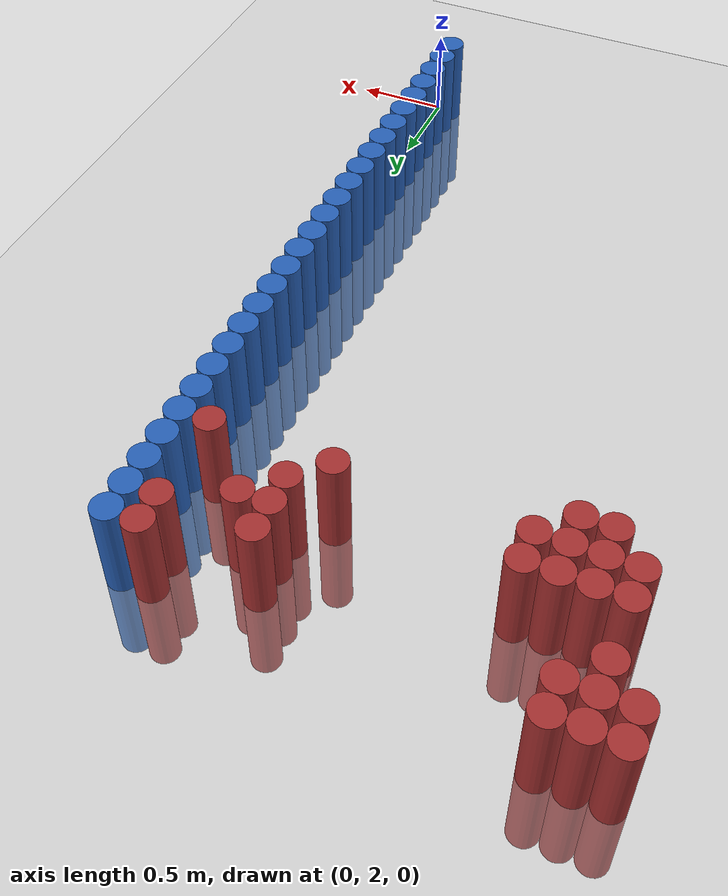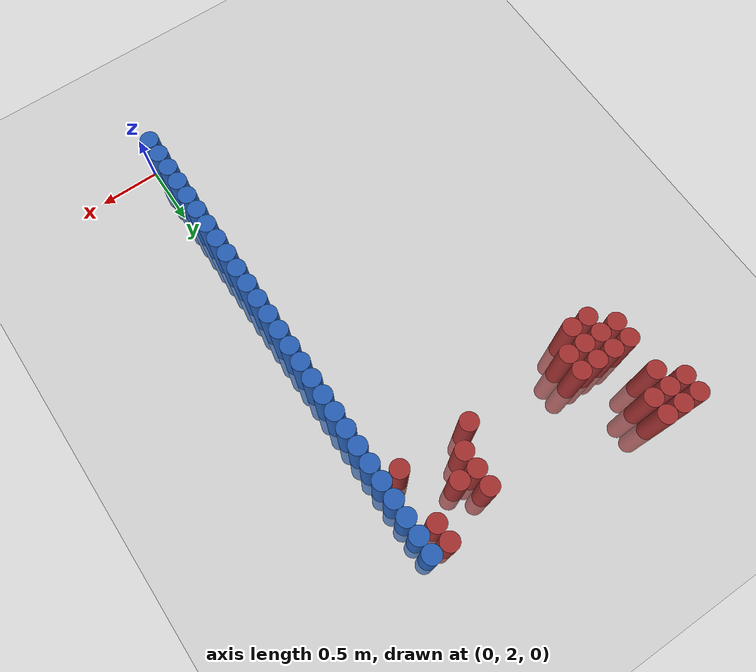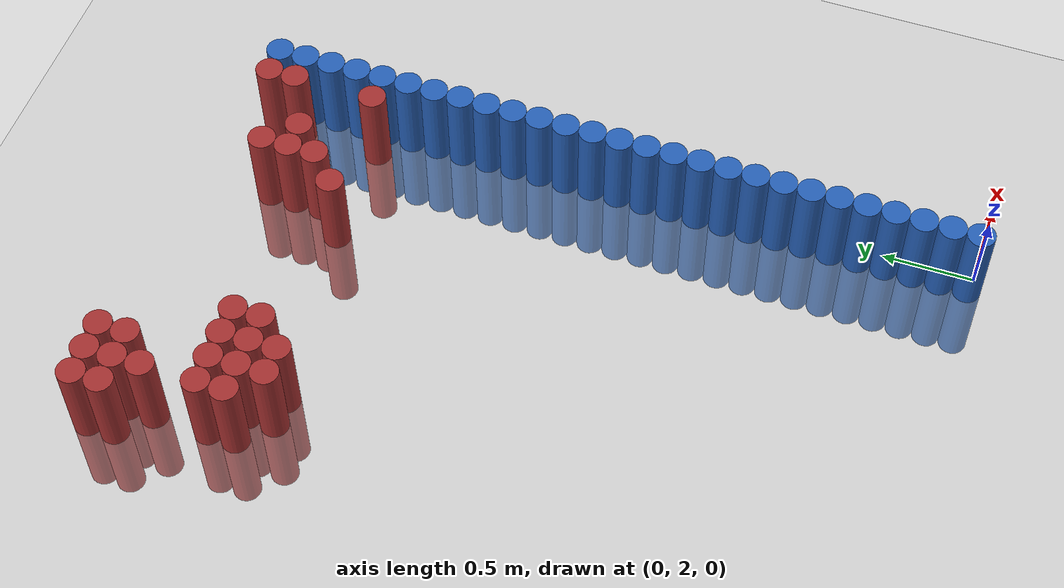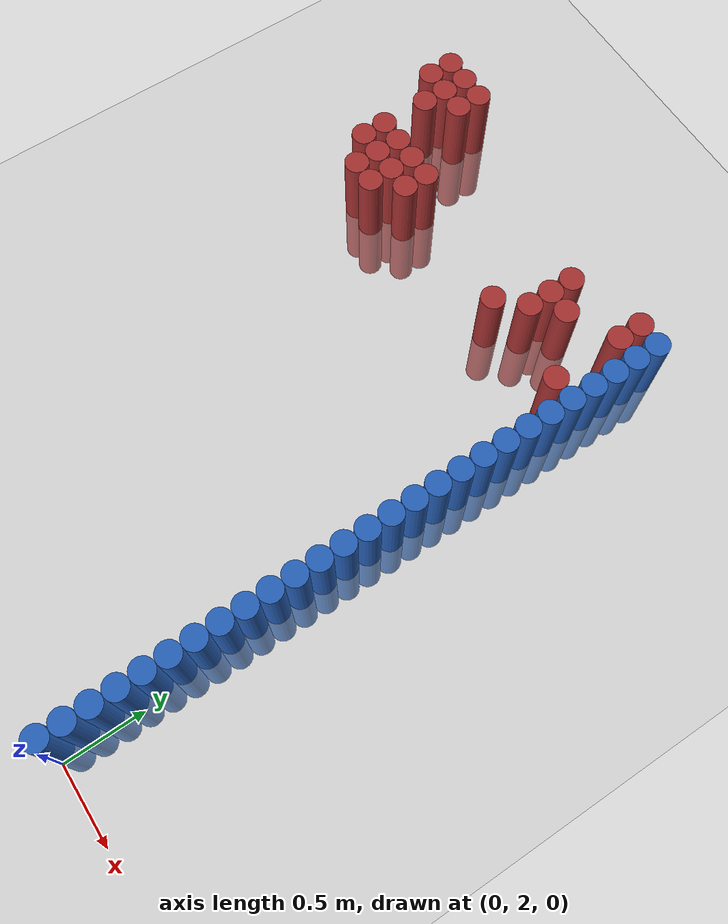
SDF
<sdf version="1.6">
 <world name="default">
  <model name="ground_plane">
   <static>1</static>
   <link name="link">
    <collision name="collision">
     <geometry><plane><normal>0 0 1</normal><size>100 100</size></plane></geometry>
     <surface><friction><ode><mu>100</mu><mu2>50</mu2></ode></friction></surface>
    </collision>
    <visual name="visual">
     <cast_shadows>0</cast_shadows>
     <geometry><plane><normal>0 0 1</normal><size>100 100</size></plane></geometry>
     <material>
      <script><uri>file://media/materials/scripts/gazebo.material</uri><name>Gazebo/Grey</name></script>
     </material>
    </visual>
   </link>
  </model>
  <model name="unit_cylinder_54">
   <static>1</static>
   <pose>-0.075000 2.025000 0.000000 0.000000 0.000000 0.000000</pose>
   <link name="link">
    <inertial>
     <mass>1</mass>
     <inertia><ixx>0.145833</ixx><ixy>0</ixy><ixz>0</ixz><iyy>0.145833</iyy><iyz>0</iyz><izz>0.125</izz></inertia>
    </inertial>
    <collision name="collision">
     <geometry><cylinder><radius>0.075000</radius><length>1</length></cylinder></geometry>
    </collision>
    <visual name="visual">
     <geometry><cylinder><radius>0.075000</radius><length>1</length></cylinder></geometry>
     <material>
      <ambient>0.152000 0.379000 0.720000 1</ambient>
      <diffuse>0.152000 0.379000 0.720000 1</diffuse>
     </material>
     <material>
      <script><name>Gazebo/Grey</name><uri>file://media/materials/scripts/gazebo.material</uri></script>
     </material>
    </visual>
   </link>
  </model>
  <model name="unit_cylinder_56">
   <static>1</static>
   <pose>-0.075000 2.175000 0.000000 0.000000 0.000000 0.000000</pose>
   <link name="link">
    <inertial>
     <mass>1</mass>
     <inertia><ixx>0.145833</ixx><ixy>0</ixy><ixz>0</ixz><iyy>0.145833</iyy><iyz>0</iyz><izz>0.125</izz></inertia>
    </inertial>
    <collision name="collision">
     <geometry><cylinder><radius>0.075000</radius><length>1</length></cylinder></geometry>
    </collision>
    <visual name="visual">
     <geometry><cylinder><radius>0.075000</radius><length>1</length></cylinder></geometry>
     <material>
      <ambient>0.152000 0.379000 0.720000 1</ambient>
      <diffuse>0.152000 0.379000 0.720000 1</diffuse>
     </material>
     <material>
      <script><name>Gazebo/Grey</name><uri>file://media/materials/scripts/gazebo.material</uri></script>
     </material>
    </visual>
   </link>
  </model>
  <model name="unit_cylinder_58">
   <static>1</static>
   <pose>-0.075000 2.325000 0.000000 0.000000 0.000000 0.000000</pose>
   <link name="link">
    <inertial>
     <mass>1</mass>
     <inertia><ixx>0.145833</ixx><ixy>0</ixy><ixz>0</ixz><iyy>0.145833</iyy><iyz>0</iyz><izz>0.125</izz></inertia>
    </inertial>
    <collision name="collision">
     <geometry><cylinder><radius>0.075000</radius><length>1</length></cylinder></geometry>
    </collision>
    <visual name="visual">
     <geometry><cylinder><radius>0.075000</radius><length>1</length></cylinder></geometry>
     <material>
      <ambient>0.152000 0.379000 0.720000 1</ambient>
      <diffuse>0.152000 0.379000 0.720000 1</diffuse>
     </material>
     <material>
      <script><name>Gazebo/Grey</name><uri>file://media/materials/scripts/gazebo.material</uri></script>
     </material>
    </visual>
   </link>
  </model>
  <model name="unit_cylinder_60">
   <static>1</static>
   <pose>-0.075000 2.475000 0.000000 0.000000 0.000000 0.000000</pose>
   <link name="link">
    <inertial>
     <mass>1</mass>
     <inertia><ixx>0.145833</ixx><ixy>0</ixy><ixz>0</ixz><iyy>0.145833</iyy><iyz>0</iyz><izz>0.125</izz></inertia>
    </inertial>
    <collision name="collision">
     <geometry><cylinder><radius>0.075000</radius><length>1</length></cylinder></geometry>
    </collision>
    <visual name="visual">
     <geometry><cylinder><radius>0.075000</radius><length>1</length></cylinder></geometry>
     <material>
      <ambient>0.152000 0.379000 0.720000 1</ambient>
      <diffuse>0.152000 0.379000 0.720000 1</diffuse>
     </material>
     <material>
      <script><name>Gazebo/Grey</name><uri>file://media/materials/scripts/gazebo.material</uri></script>
     </material>
    </visual>
   </link>
  </model>
  <model name="unit_cylinder_62">
   <static>1</static>
   <pose>-0.075000 2.625000 0.000000 0.000000 0.000000 0.000000</pose>
   <link name="link">
    <inertial>
     <mass>1</mass>
     <inertia><ixx>0.145833</ixx><ixy>0</ixy><ixz>0</ixz><iyy>0.145833</iyy><iyz>0</iyz><izz>0.125</izz></inertia>
    </inertial>
    <collision name="collision">
     <geometry><cylinder><radius>0.075000</radius><length>1</length></cylinder></geometry>
    </collision>
    <visual name="visual">
     <geometry><cylinder><radius>0.075000</radius><length>1</length></cylinder></geometry>
     <material>
      <ambient>0.152000 0.379000 0.720000 1</ambient>
      <diffuse>0.152000 0.379000 0.720000 1</diffuse>
     </material>
     <material>
      <script><name>Gazebo/Grey</name><uri>file://media/materials/scripts/gazebo.material</uri></script>
     </material>
    </visual>
   </link>
  </model>
  <model name="unit_cylinder_64">
   <static>1</static>
   <pose>-0.075000 2.775000 0.000000 0.000000 0.000000 0.000000</pose>
   <link name="link">
    <inertial>
     <mass>1</mass>
     <inertia><ixx>0.145833</ixx><ixy>0</ixy><ixz>0</ixz><iyy>0.145833</iyy><iyz>0</iyz><izz>0.125</izz></inertia>
    </inertial>
    <collision name="collision">
     <geometry><cylinder><radius>0.075000</radius><length>1</length></cylinder></geometry>
    </collision>
    <visual name="visual">
     <geometry><cylinder><radius>0.075000</radius><length>1</length></cylinder></geometry>
     <material>
      <ambient>0.152000 0.379000 0.720000 1</ambient>
      <diffuse>0.152000 0.379000 0.720000 1</diffuse>
     </material>
     <material>
      <script><name>Gazebo/Grey</name><uri>file://media/materials/scripts/gazebo.material</uri></script>
     </material>
    </visual>
   </link>
  </model>
  <model name="unit_cylinder_66">
   <static>1</static>
   <pose>-0.075000 2.925000 0.000000 0.000000 0.000000 0.000000</pose>
   <link name="link">
    <inertial>
     <mass>1</mass>
     <inertia><ixx>0.145833</ixx><ixy>0</ixy><ixz>0</ixz><iyy>0.145833</iyy><iyz>0</iyz><izz>0.125</izz></inertia>
    </inertial>
    <collision name="collision">
     <geometry><cylinder><radius>0.075000</radius><length>1</length></cylinder></geometry>
    </collision>
    <visual name="visual">
     <geometry><cylinder><radius>0.075000</radius><length>1</length></cylinder></geometry>
     <material>
      <ambient>0.152000 0.379000 0.720000 1</ambient>
      <diffuse>0.152000 0.379000 0.720000 1</diffuse>
     </material>
     <material>
      <script><name>Gazebo/Grey</name><uri>file://media/materials/scripts/gazebo.material</uri></script>
     </material>
    </visual>
   </link>
  </model>
  <model name="unit_cylinder_68">
   <static>1</static>
   <pose>-0.075000 3.075000 0.000000 0.000000 0.000000 0.000000</pose>
   <link name="link">
    <inertial>
     <mass>1</mass>
     <inertia><ixx>0.145833</ixx><ixy>0</ixy><ixz>0</ixz><iyy>0.145833</iyy><iyz>0</iyz><izz>0.125</izz></inertia>
    </inertial>
    <collision name="collision">
     <geometry><cylinder><radius>0.075000</radius><length>1</length></cylinder></geometry>
    </collision>
    <visual name="visual">
     <geometry><cylinder><radius>0.075000</radius><length>1</length></cylinder></geometry>
     <material>
      <ambient>0.152000 0.379000 0.720000 1</ambient>
      <diffuse>0.152000 0.379000 0.720000 1</diffuse>
     </material>
     <material>
      <script><name>Gazebo/Grey</name><uri>file://media/materials/scripts/gazebo.material</uri></script>
     </material>
    </visual>
   </link>
  </model>
  <model name="unit_cylinder_70">
   <static>1</static>
   <pose>-0.075000 3.225000 0.000000 0.000000 0.000000 0.000000</pose>
   <link name="link">
    <inertial>
     <mass>1</mass>
     <inertia><ixx>0.145833</ixx><ixy>0</ixy><ixz>0</ixz><iyy>0.145833</iyy><iyz>0</iyz><izz>0.125</izz></inertia>
    </inertial>
    <collision name="collision">
     <geometry><cylinder><radius>0.075000</radius><length>1</length></cylinder></geometry>
    </collision>
    <visual name="visual">
     <geometry><cylinder><radius>0.075000</radius><length>1</length></cylinder></geometry>
     <material>
      <ambient>0.152000 0.379000 0.720000 1</ambient>
      <diffuse>0.152000 0.379000 0.720000 1</diffuse>
     </material>
     <material>
      <script><name>Gazebo/Grey</name><uri>file://media/materials/scripts/gazebo.material</uri></script>
     </material>
    </visual>
   </link>
  </model>
  <model name="unit_cylinder_72">
   <static>1</static>
   <pose>-0.075000 3.375000 0.000000 0.000000 0.000000 0.000000</pose>
   <link name="link">
    <inertial>
     <mass>1</mass>
     <inertia><ixx>0.145833</ixx><ixy>0</ixy><ixz>0</ixz><iyy>0.145833</iyy><iyz>0</iyz><izz>0.125</izz></inertia>
    </inertial>
    <collision name="collision">
     <geometry><cylinder><radius>0.075000</radius><length>1</length></cylinder></geometry>
    </collision>
    <visual name="visual">
     <geometry><cylinder><radius>0.075000</radius><length>1</length></cylinder></geometry>
     <material>
      <ambient>0.152000 0.379000 0.720000 1</ambient>
      <diffuse>0.152000 0.379000 0.720000 1</diffuse>
     </material>
     <material>
      <script><name>Gazebo/Grey</name><uri>file://media/materials/scripts/gazebo.material</uri></script>
     </material>
    </visual>
   </link>
  </model>
  <model name="unit_cylinder_74">
   <static>1</static>
   <pose>-0.075000 3.525000 0.000000 0.000000 0.000000 0.000000</pose>
   <link name="link">
    <inertial>
     <mass>1</mass>
     <inertia><ixx>0.145833</ixx><ixy>0</ixy><ixz>0</ixz><iyy>0.145833</iyy><iyz>0</iyz><izz>0.125</izz></inertia>
    </inertial>
    <collision name="collision">
     <geometry><cylinder><radius>0.075000</radius><length>1</length></cylinder></geometry>
    </collision>
    <visual name="visual">
     <geometry><cylinder><radius>0.075000</radius><length>1</length></cylinder></geometry>
     <material>
      <ambient>0.152000 0.379000 0.720000 1</ambient>
      <diffuse>0.152000 0.379000 0.720000 1</diffuse>
     </material>
     <material>
      <script><name>Gazebo/Grey</name><uri>file://media/materials/scripts/gazebo.material</uri></script>
     </material>
    </visual>
   </link>
  </model>
  <model name="unit_cylinder_76">
   <static>1</static>
   <pose>-0.075000 3.675000 0.000000 0.000000 0.000000 0.000000</pose>
   <link name="link">
    <inertial>
     <mass>1</mass>
     <inertia><ixx>0.145833</ixx><ixy>0</ixy><ixz>0</ixz><iyy>0.145833</iyy><iyz>0</iyz><izz>0.125</izz></inertia>
    </inertial>
    <collision name="collision">
     <geometry><cylinder><radius>0.075000</radius><length>1</length></cylinder></geometry>
    </collision>
    <visual name="visual">
     <geometry><cylinder><radius>0.075000</radius><length>1</length></cylinder></geometry>
     <material>
      <ambient>0.152000 0.379000 0.720000 1</ambient>
      <diffuse>0.152000 0.379000 0.720000 1</diffuse>
     </material>
     <material>
      <script><name>Gazebo/Grey</name><uri>file://media/materials/scripts/gazebo.material</uri></script>
     </material>
    </visual>
   </link>
  </model>
  <model name="unit_cylinder_78">
   <static>1</static>
   <pose>-0.075000 3.825000 0.000000 0.000000 0.000000 0.000000</pose>
   <link name="link">
    <inertial>
     <mass>1</mass>
     <inertia><ixx>0.145833</ixx><ixy>0</ixy><ixz>0</ixz><iyy>0.145833</iyy><iyz>0</iyz><izz>0.125</izz></inertia>
    </inertial>
    <collision name="collision">
     <geometry><cylinder><radius>0.075000</radius><length>1</length></cylinder></geometry>
    </collision>
    <visual name="visual">
     <geometry><cylinder><radius>0.075000</radius><length>1</length></cylinder></geometry>
     <material>
      <ambient>0.152000 0.379000 0.720000 1</ambient>
      <diffuse>0.152000 0.379000 0.720000 1</diffuse>
     </material>
     <material>
      <script><name>Gazebo/Grey</name><uri>file://media/materials/scripts/gazebo.material</uri></script>
     </material>
    </visual>
   </link>
  </model>
  <model name="unit_cylinder_80">
   <static>1</static>
   <pose>-0.075000 3.975000 0.000000 0.000000 0.000000 0.000000</pose>
   <link name="link">
    <inertial>
     <mass>1</mass>
     <inertia><ixx>0.145833</ixx><ixy>0</ixy><ixz>0</ixz><iyy>0.145833</iyy><iyz>0</iyz><izz>0.125</izz></inertia>
    </inertial>
    <collision name="collision">
     <geometry><cylinder><radius>0.075000</radius><length>1</length></cylinder></geometry>
    </collision>
    <visual name="visual">
     <geometry><cylinder><radius>0.075000</radius><length>1</length></cylinder></geometry>
     <material>
      <ambient>0.152000 0.379000 0.720000 1</ambient>
      <diffuse>0.152000 0.379000 0.720000 1</diffuse>
     </material>
     <material>
      <script><name>Gazebo/Grey</name><uri>file://media/materials/scripts/gazebo.material</uri></script>
     </material>
    </visual>
   </link>
  </model>
  <model name="unit_cylinder_82">
   <static>1</static>
   <pose>-0.075000 4.125000 0.000000 0.000000 0.000000 0.000000</pose>
   <link name="link">
    <inertial>
     <mass>1</mass>
     <inertia><ixx>0.145833</ixx><ixy>0</ixy><ixz>0</ixz><iyy>0.145833</iyy><iyz>0</iyz><izz>0.125</izz></inertia>
    </inertial>
    <collision name="collision">
     <geometry><cylinder><radius>0.075000</radius><length>1</length></cylinder></geometry>
    </collision>
    <visual name="visual">
     <geometry><cylinder><radius>0.075000</radius><length>1</length></cylinder></geometry>
     <material>
      <ambient>0.152000 0.379000 0.720000 1</ambient>
      <diffuse>0.152000 0.379000 0.720000 1</diffuse>
     </material>
     <material>
      <script><name>Gazebo/Grey</name><uri>file://media/materials/scripts/gazebo.material</uri></script>
     </material>
    </visual>
   </link>
  </model>
  <model name="unit_cylinder_84">
   <static>1</static>
   <pose>-0.075000 4.275000 0.000000 0.000000 0.000000 0.000000</pose>
   <link name="link">
    <inertial>
     <mass>1</mass>
     <inertia><ixx>0.145833</ixx><ixy>0</ixy><ixz>0</ixz><iyy>0.145833</iyy><iyz>0</iyz><izz>0.125</izz></inertia>
    </inertial>
    <collision name="collision">
     <geometry><cylinder><radius>0.075000</radius><length>1</length></cylinder></geometry>
    </collision>
    <visual name="visual">
     <geometry><cylinder><radius>0.075000</radius><length>1</length></cylinder></geometry>
     <material>
      <ambient>0.152000 0.379000 0.720000 1</ambient>
      <diffuse>0.152000 0.379000 0.720000 1</diffuse>
     </material>
     <material>
      <script><name>Gazebo/Grey</name><uri>file://media/materials/scripts/gazebo.material</uri></script>
     </material>
    </visual>
   </link>
  </model>
  <model name="unit_cylinder_86">
   <static>1</static>
   <pose>-0.075000 4.425000 0.000000 0.000000 0.000000 0.000000</pose>
   <link name="link">
    <inertial>
     <mass>1</mass>
     <inertia><ixx>0.145833</ixx><ixy>0</ixy><ixz>0</ixz><iyy>0.145833</iyy><iyz>0</iyz><izz>0.125</izz></inertia>
    </inertial>
    <collision name="collision">
     <geometry><cylinder><radius>0.075000</radius><length>1</length></cylinder></geometry>
    </collision>
    <visual name="visual">
     <geometry><cylinder><radius>0.075000</radius><length>1</length></cylinder></geometry>
     <material>
      <ambient>0.152000 0.379000 0.720000 1</ambient>
      <diffuse>0.152000 0.379000 0.720000 1</diffuse>
     </material>
     <material>
      <script><name>Gazebo/Grey</name><uri>file://media/materials/scripts/gazebo.material</uri></script>
     </material>
    </visual>
   </link>
  </model>
  <model name="unit_cylinder_88">
   <static>1</static>
   <pose>-0.075000 4.575000 0.000000 0.000000 0.000000 0.000000</pose>
   <link name="link">
    <inertial>
     <mass>1</mass>
     <inertia><ixx>0.145833</ixx><ixy>0</ixy><ixz>0</ixz><iyy>0.145833</iyy><iyz>0</iyz><izz>0.125</izz></inertia>
    </inertial>
    <collision name="collision">
     <geometry><cylinder><radius>0.075000</radius><length>1</length></cylinder></geometry>
    </collision>
    <visual name="visual">
     <geometry><cylinder><radius>0.075000</radius><length>1</length></cylinder></geometry>
     <material>
      <ambient>0.152000 0.379000 0.720000 1</ambient>
      <diffuse>0.152000 0.379000 0.720000 1</diffuse>
     </material>
     <material>
      <script><name>Gazebo/Grey</name><uri>file://media/materials/scripts/gazebo.material</uri></script>
     </material>
    </visual>
   </link>
  </model>
  <model name="unit_cylinder_90">
   <static>1</static>
   <pose>-0.075000 4.725000 0.000000 0.000000 0.000000 0.000000</pose>
   <link name="link">
    <inertial>
     <mass>1</mass>
     <inertia><ixx>0.145833</ixx><ixy>0</ixy><ixz>0</ixz><iyy>0.145833</iyy><iyz>0</iyz><izz>0.125</izz></inertia>
    </inertial>
    <collision name="collision">
     <geometry><cylinder><radius>0.075000</radius><length>1</length></cylinder></geometry>
    </collision>
    <visual name="visual">
     <geometry><cylinder><radius>0.075000</radius><length>1</length></cylinder></geometry>
     <material>
      <ambient>0.152000 0.379000 0.720000 1</ambient>
      <diffuse>0.152000 0.379000 0.720000 1</diffuse>
     </material>
     <material>
      <script><name>Gazebo/Grey</name><uri>file://media/materials/scripts/gazebo.material</uri></script>
     </material>
    </visual>
   </link>
  </model>
  <model name="unit_cylinder_92">
   <static>1</static>
   <pose>-0.075000 4.875000 0.000000 0.000000 0.000000 0.000000</pose>
   <link name="link">
    <inertial>
     <mass>1</mass>
     <inertia><ixx>0.145833</ixx><ixy>0</ixy><ixz>0</ixz><iyy>0.145833</iyy><iyz>0</iyz><izz>0.125</izz></inertia>
    </inertial>
    <collision name="collision">
     <geometry><cylinder><radius>0.075000</radius><length>1</length></cylinder></geometry>
    </collision>
    <visual name="visual">
     <geometry><cylinder><radius>0.075000</radius><length>1</length></cylinder></geometry>
     <material>
      <ambient>0.152000 0.379000 0.720000 1</ambient>
      <diffuse>0.152000 0.379000 0.720000 1</diffuse>
     </material>
     <material>
      <script><name>Gazebo/Grey</name><uri>file://media/materials/scripts/gazebo.material</uri></script>
     </material>
    </visual>
   </link>
  </model>
  <model name="unit_cylinder_94">
   <static>1</static>
   <pose>-0.075000 5.025000 0.000000 0.000000 0.000000 0.000000</pose>
   <link name="link">
    <inertial>
     <mass>1</mass>
     <inertia><ixx>0.145833</ixx><ixy>0</ixy><ixz>0</ixz><iyy>0.145833</iyy><iyz>0</iyz><izz>0.125</izz></inertia>
    </inertial>
    <collision name="collision">
     <geometry><cylinder><radius>0.075000</radius><length>1</length></cylinder></geometry>
    </collision>
    <visual name="visual">
     <geometry><cylinder><radius>0.075000</radius><length>1</length></cylinder></geometry>
     <material>
      <ambient>0.152000 0.379000 0.720000 1</ambient>
      <diffuse>0.152000 0.379000 0.720000 1</diffuse>
     </material>
     <material>
      <script><name>Gazebo/Grey</name><uri>file://media/materials/scripts/gazebo.material</uri></script>
     </material>
    </visual>
   </link>
  </model>
  <model name="unit_cylinder_253">
   <static>1</static>
   <pose>-2.325000 5.925000 0.000000 0.000000 0.000000 0.000000</pose>
   <link name="link">
    <inertial>
     <mass>1</mass>
     <inertia><ixx>0.145833</ixx><ixy>0</ixy><ixz>0</ixz><iyy>0.145833</iyy><iyz>0</iyz><izz>0.125</izz></inertia>
    </inertial>
    <collision name="collision">
     <geometry><cylinder><radius>0.075000</radius><length>1</length></cylinder></geometry>
    </collision>
    <visual name="visual">
     <geometry><cylinder><radius>0.075000</radius><length>1</length></cylinder></geometry>
     <material>
      <ambient>0.648000 0.192000 0.192000 1</ambient>
      <diffuse>0.648000 0.192000 0.192000 1</diffuse>
     </material>
     <material>
      <script><name>Gazebo/Grey</name><uri>file://media/materials/scripts/gazebo.material</uri></script>
     </material>
    </visual>
   </link>
  </model>
  <model name="unit_cylinder_254">
   <static>1</static>
   <pose>-2.325000 6.075000 0.000000 0.000000 0.000000 0.000000</pose>
   <link name="link">
    <inertial>
     <mass>1</mass>
     <inertia><ixx>0.145833</ixx><ixy>0</ixy><ixz>0</ixz><iyy>0.145833</iyy><iyz>0</iyz><izz>0.125</izz></inertia>
    </inertial>
    <collision name="collision">
     <geometry><cylinder><radius>0.075000</radius><length>1</length></cylinder></geometry>
    </collision>
    <visual name="visual">
     <geometry><cylinder><radius>0.075000</radius><length>1</length></cylinder></geometry>
     <material>
      <ambient>0.648000 0.192000 0.192000 1</ambient>
      <diffuse>0.648000 0.192000 0.192000 1</diffuse>
     </material>
     <material>
      <script><name>Gazebo/Grey</name><uri>file://media/materials/scripts/gazebo.material</uri></script>
     </material>
    </visual>
   </link>
  </model>
  <model name="unit_cylinder_262">
   <static>1</static>
   <pose>-2.175000 5.325000 0.000000 0.000000 0.000000 0.000000</pose>
   <link name="link">
    <inertial>
     <mass>1</mass>
     <inertia><ixx>0.145833</ixx><ixy>0</ixy><ixz>0</ixz><iyy>0.145833</iyy><iyz>0</iyz><izz>0.125</izz></inertia>
    </inertial>
    <collision name="collision">
     <geometry><cylinder><radius>0.075000</radius><length>1</length></cylinder></geometry>
    </collision>
    <visual name="visual">
     <geometry><cylinder><radius>0.075000</radius><length>1</length></cylinder></geometry>
     <material>
      <ambient>0.648000 0.192000 0.192000 1</ambient>
      <diffuse>0.648000 0.192000 0.192000 1</diffuse>
     </material>
     <material>
      <script><name>Gazebo/Grey</name><uri>file://media/materials/scripts/gazebo.material</uri></script>
     </material>
    </visual>
   </link>
  </model>
  <model name="unit_cylinder_263">
   <static>1</static>
   <pose>-2.175000 5.475000 0.000000 0.000000 0.000000 0.000000</pose>
   <link name="link">
    <inertial>
     <mass>1</mass>
     <inertia><ixx>0.145833</ixx><ixy>0</ixy><ixz>0</ixz><iyy>0.145833</iyy><iyz>0</iyz><izz>0.125</izz></inertia>
    </inertial>
    <collision name="collision">
     <geometry><cylinder><radius>0.075000</radius><length>1</length></cylinder></geometry>
    </collision>
    <visual name="visual">
     <geometry><cylinder><radius>0.075000</radius><length>1</length></cylinder></geometry>
     <material>
      <ambient>0.648000 0.192000 0.192000 1</ambient>
      <diffuse>0.648000 0.192000 0.192000 1</diffuse>
     </material>
     <material>
      <script><name>Gazebo/Grey</name><uri>file://media/materials/scripts/gazebo.material</uri></script>
     </material>
    </visual>
   </link>
  </model>
  <model name="unit_cylinder_264">
   <static>1</static>
   <pose>-2.175000 5.775000 0.000000 0.000000 0.000000 0.000000</pose>
   <link name="link">
    <inertial>
     <mass>1</mass>
     <inertia><ixx>0.145833</ixx><ixy>0</ixy><ixz>0</ixz><iyy>0.145833</iyy><iyz>0</iyz><izz>0.125</izz></inertia>
    </inertial>
    <collision name="collision">
     <geometry><cylinder><radius>0.075000</radius><length>1</length></cylinder></geometry>
    </collision>
    <visual name="visual">
     <geometry><cylinder><radius>0.075000</radius><length>1</length></cylinder></geometry>
     <material>
      <ambient>0.648000 0.192000 0.192000 1</ambient>
      <diffuse>0.648000 0.192000 0.192000 1</diffuse>
     </material>
     <material>
      <script><name>Gazebo/Grey</name><uri>file://media/materials/scripts/gazebo.material</uri></script>
     </material>
    </visual>
   </link>
  </model>
  <model name="unit_cylinder_265">
   <static>1</static>
   <pose>-2.175000 5.925000 0.000000 0.000000 0.000000 0.000000</pose>
   <link name="link">
    <inertial>
     <mass>1</mass>
     <inertia><ixx>0.145833</ixx><ixy>0</ixy><ixz>0</ixz><iyy>0.145833</iyy><iyz>0</iyz><izz>0.125</izz></inertia>
    </inertial>
    <collision name="collision">
     <geometry><cylinder><radius>0.075000</radius><length>1</length></cylinder></geometry>
    </collision>
    <visual name="visual">
     <geometry><cylinder><radius>0.075000</radius><length>1</length></cylinder></geometry>
     <material>
      <ambient>0.648000 0.192000 0.192000 1</ambient>
      <diffuse>0.648000 0.192000 0.192000 1</diffuse>
     </material>
     <material>
      <script><name>Gazebo/Grey</name><uri>file://media/materials/scripts/gazebo.material</uri></script>
     </material>
    </visual>
   </link>
  </model>
  <model name="unit_cylinder_266">
   <static>1</static>
   <pose>-2.175000 6.075000 0.000000 0.000000 0.000000 0.000000</pose>
   <link name="link">
    <inertial>
     <mass>1</mass>
     <inertia><ixx>0.145833</ixx><ixy>0</ixy><ixz>0</ixz><iyy>0.145833</iyy><iyz>0</iyz><izz>0.125</izz></inertia>
    </inertial>
    <collision name="collision">
     <geometry><cylinder><radius>0.075000</radius><length>1</length></cylinder></geometry>
    </collision>
    <visual name="visual">
     <geometry><cylinder><radius>0.075000</radius><length>1</length></cylinder></geometry>
     <material>
      <ambient>0.648000 0.192000 0.192000 1</ambient>
      <diffuse>0.648000 0.192000 0.192000 1</diffuse>
     </material>
     <material>
      <script><name>Gazebo/Grey</name><uri>file://media/materials/scripts/gazebo.material</uri></script>
     </material>
    </visual>
   </link>
  </model>
  <model name="unit_cylinder_273">
   <static>1</static>
   <pose>-2.025000 5.175000 0.000000 0.000000 0.000000 0.000000</pose>
   <link name="link">
    <inertial>
     <mass>1</mass>
     <inertia><ixx>0.145833</ixx><ixy>0</ixy><ixz>0</ixz><iyy>0.145833</iyy><iyz>0</iyz><izz>0.125</izz></inertia>
    </inertial>
    <collision name="collision">
     <geometry><cylinder><radius>0.075000</radius><length>1</length></cylinder></geometry>
    </collision>
    <visual name="visual">
     <geometry><cylinder><radius>0.075000</radius><length>1</length></cylinder></geometry>
     <material>
      <ambient>0.648000 0.192000 0.192000 1</ambient>
      <diffuse>0.648000 0.192000 0.192000 1</diffuse>
     </material>
     <material>
      <script><name>Gazebo/Grey</name><uri>file://media/materials/scripts/gazebo.material</uri></script>
     </material>
    </visual>
   </link>
  </model>
  <model name="unit_cylinder_274">
   <static>1</static>
   <pose>-2.025000 5.325000 0.000000 0.000000 0.000000 0.000000</pose>
   <link name="link">
    <inertial>
     <mass>1</mass>
     <inertia><ixx>0.145833</ixx><ixy>0</ixy><ixz>0</ixz><iyy>0.145833</iyy><iyz>0</iyz><izz>0.125</izz></inertia>
    </inertial>
    <collision name="collision">
     <geometry><cylinder><radius>0.075000</radius><length>1</length></cylinder></geometry>
    </collision>
    <visual name="visual">
     <geometry><cylinder><radius>0.075000</radius><length>1</length></cylinder></geometry>
     <material>
      <ambient>0.648000 0.192000 0.192000 1</ambient>
      <diffuse>0.648000 0.192000 0.192000 1</diffuse>
     </material>
     <material>
      <script><name>Gazebo/Grey</name><uri>file://media/materials/scripts/gazebo.material</uri></script>
     </material>
    </visual>
   </link>
  </model>
  <model name="unit_cylinder_275">
   <static>1</static>
   <pose>-2.025000 5.475000 0.000000 0.000000 0.000000 0.000000</pose>
   <link name="link">
    <inertial>
     <mass>1</mass>
     <inertia><ixx>0.145833</ixx><ixy>0</ixy><ixz>0</ixz><iyy>0.145833</iyy><iyz>0</iyz><izz>0.125</izz></inertia>
    </inertial>
    <collision name="collision">
     <geometry><cylinder><radius>0.075000</radius><length>1</length></cylinder></geometry>
    </collision>
    <visual name="visual">
     <geometry><cylinder><radius>0.075000</radius><length>1</length></cylinder></geometry>
     <material>
      <ambient>0.648000 0.192000 0.192000 1</ambient>
      <diffuse>0.648000 0.192000 0.192000 1</diffuse>
     </material>
     <material>
      <script><name>Gazebo/Grey</name><uri>file://media/materials/scripts/gazebo.material</uri></script>
     </material>
    </visual>
   </link>
  </model>
  <model name="unit_cylinder_276">
   <static>1</static>
   <pose>-2.025000 5.925000 0.000000 0.000000 0.000000 0.000000</pose>
   <link name="link">
    <inertial>
     <mass>1</mass>
     <inertia><ixx>0.145833</ixx><ixy>0</ixy><ixz>0</ixz><iyy>0.145833</iyy><iyz>0</iyz><izz>0.125</izz></inertia>
    </inertial>
    <collision name="collision">
     <geometry><cylinder><radius>0.075000</radius><length>1</length></cylinder></geometry>
    </collision>
    <visual name="visual">
     <geometry><cylinder><radius>0.075000</radius><length>1</length></cylinder></geometry>
     <material>
      <ambient>0.648000 0.192000 0.192000 1</ambient>
      <diffuse>0.648000 0.192000 0.192000 1</diffuse>
     </material>
     <material>
      <script><name>Gazebo/Grey</name><uri>file://media/materials/scripts/gazebo.material</uri></script>
     </material>
    </visual>
   </link>
  </model>
  <model name="unit_cylinder_277">
   <static>1</static>
   <pose>-2.025000 6.075000 0.000000 0.000000 0.000000 0.000000</pose>
   <link name="link">
    <inertial>
     <mass>1</mass>
     <inertia><ixx>0.145833</ixx><ixy>0</ixy><ixz>0</ixz><iyy>0.145833</iyy><iyz>0</iyz><izz>0.125</izz></inertia>
    </inertial>
    <collision name="collision">
     <geometry><cylinder><radius>0.075000</radius><length>1</length></cylinder></geometry>
    </collision>
    <visual name="visual">
     <geometry><cylinder><radius>0.075000</radius><length>1</length></cylinder></geometry>
     <material>
      <ambient>0.648000 0.192000 0.192000 1</ambient>
      <diffuse>0.648000 0.192000 0.192000 1</diffuse>
     </material>
     <material>
      <script><name>Gazebo/Grey</name><uri>file://media/materials/scripts/gazebo.material</uri></script>
     </material>
    </visual>
   </link>
  </model>
  <model name="unit_cylinder_284">
   <static>1</static>
   <pose>-1.875000 5.175000 0.000000 0.000000 0.000000 0.000000</pose>
   <link name="link">
    <inertial>
     <mass>1</mass>
     <inertia><ixx>0.145833</ixx><ixy>0</ixy><ixz>0</ixz><iyy>0.145833</iyy><iyz>0</iyz><izz>0.125</izz></inertia>
    </inertial>
    <collision name="collision">
     <geometry><cylinder><radius>0.075000</radius><length>1</length></cylinder></geometry>
    </collision>
    <visual name="visual">
     <geometry><cylinder><radius>0.075000</radius><length>1</length></cylinder></geometry>
     <material>
      <ambient>0.648000 0.192000 0.192000 1</ambient>
      <diffuse>0.648000 0.192000 0.192000 1</diffuse>
     </material>
     <material>
      <script><name>Gazebo/Grey</name><uri>file://media/materials/scripts/gazebo.material</uri></script>
     </material>
    </visual>
   </link>
  </model>
  <model name="unit_cylinder_285">
   <static>1</static>
   <pose>-1.875000 5.325000 0.000000 0.000000 0.000000 0.000000</pose>
   <link name="link">
    <inertial>
     <mass>1</mass>
     <inertia><ixx>0.145833</ixx><ixy>0</ixy><ixz>0</ixz><iyy>0.145833</iyy><iyz>0</iyz><izz>0.125</izz></inertia>
    </inertial>
    <collision name="collision">
     <geometry><cylinder><radius>0.075000</radius><length>1</length></cylinder></geometry>
    </collision>
    <visual name="visual">
     <geometry><cylinder><radius>0.075000</radius><length>1</length></cylinder></geometry>
     <material>
      <ambient>0.648000 0.192000 0.192000 1</ambient>
      <diffuse>0.648000 0.192000 0.192000 1</diffuse>
     </material>
     <material>
      <script><name>Gazebo/Grey</name><uri>file://media/materials/scripts/gazebo.material</uri></script>
     </material>
    </visual>
   </link>
  </model>
  <model name="unit_cylinder_286">
   <static>1</static>
   <pose>-1.875000 5.475000 0.000000 0.000000 0.000000 0.000000</pose>
   <link name="link">
    <inertial>
     <mass>1</mass>
     <inertia><ixx>0.145833</ixx><ixy>0</ixy><ixz>0</ixz><iyy>0.145833</iyy><iyz>0</iyz><izz>0.125</izz></inertia>
    </inertial>
    <collision name="collision">
     <geometry><cylinder><radius>0.075000</radius><length>1</length></cylinder></geometry>
    </collision>
    <visual name="visual">
     <geometry><cylinder><radius>0.075000</radius><length>1</length></cylinder></geometry>
     <material>
      <ambient>0.648000 0.192000 0.192000 1</ambient>
      <diffuse>0.648000 0.192000 0.192000 1</diffuse>
     </material>
     <material>
      <script><name>Gazebo/Grey</name><uri>file://media/materials/scripts/gazebo.material</uri></script>
     </material>
    </visual>
   </link>
  </model>
  <model name="unit_cylinder_293">
   <static>1</static>
   <pose>-1.725000 5.325000 0.000000 0.000000 0.000000 0.000000</pose>
   <link name="link">
    <inertial>
     <mass>1</mass>
     <inertia><ixx>0.145833</ixx><ixy>0</ixy><ixz>0</ixz><iyy>0.145833</iyy><iyz>0</iyz><izz>0.125</izz></inertia>
    </inertial>
    <collision name="collision">
     <geometry><cylinder><radius>0.075000</radius><length>1</length></cylinder></geometry>
    </collision>
    <visual name="visual">
     <geometry><cylinder><radius>0.075000</radius><length>1</length></cylinder></geometry>
     <material>
      <ambient>0.648000 0.192000 0.192000 1</ambient>
      <diffuse>0.648000 0.192000 0.192000 1</diffuse>
     </material>
     <material>
      <script><name>Gazebo/Grey</name><uri>file://media/materials/scripts/gazebo.material</uri></script>
     </material>
    </visual>
   </link>
  </model>
  <model name="unit_cylinder_294">
   <static>1</static>
   <pose>-1.725000 5.475000 0.000000 0.000000 0.000000 0.000000</pose>
   <link name="link">
    <inertial>
     <mass>1</mass>
     <inertia><ixx>0.145833</ixx><ixy>0</ixy><ixz>0</ixz><iyy>0.145833</iyy><iyz>0</iyz><izz>0.125</izz></inertia>
    </inertial>
    <collision name="collision">
     <geometry><cylinder><radius>0.075000</radius><length>1</length></cylinder></geometry>
    </collision>
    <visual name="visual">
     <geometry><cylinder><radius>0.075000</radius><length>1</length></cylinder></geometry>
     <material>
      <ambient>0.648000 0.192000 0.192000 1</ambient>
      <diffuse>0.648000 0.192000 0.192000 1</diffuse>
     </material>
     <material>
      <script><name>Gazebo/Grey</name><uri>file://media/materials/scripts/gazebo.material</uri></script>
     </material>
    </visual>
   </link>
  </model>
  <model name="unit_cylinder_310">
   <static>1</static>
   <pose>-0.825000 5.325000 0.000000 0.000000 0.000000 0.000000</pose>
   <link name="link">
    <inertial>
     <mass>1</mass>
     <inertia><ixx>0.145833</ixx><ixy>0</ixy><ixz>0</ixz><iyy>0.145833</iyy><iyz>0</iyz><izz>0.125</izz></inertia>
    </inertial>
    <collision name="collision">
     <geometry><cylinder><radius>0.075000</radius><length>1</length></cylinder></geometry>
    </collision>
    <visual name="visual">
     <geometry><cylinder><radius>0.075000</radius><length>1</length></cylinder></geometry>
     <material>
      <ambient>0.648000 0.192000 0.192000 1</ambient>
      <diffuse>0.648000 0.192000 0.192000 1</diffuse>
     </material>
     <material>
      <script><name>Gazebo/Grey</name><uri>file://media/materials/scripts/gazebo.material</uri></script>
     </material>
    </visual>
   </link>
  </model>
  <model name="unit_cylinder_311">
   <static>1</static>
   <pose>-0.675000 5.475000 0.000000 0.000000 0.000000 0.000000</pose>
   <link name="link">
    <inertial>
     <mass>1</mass>
     <inertia><ixx>0.145833</ixx><ixy>0</ixy><ixz>0</ixz><iyy>0.145833</iyy><iyz>0</iyz><izz>0.125</izz></inertia>
    </inertial>
    <collision name="collision">
     <geometry><cylinder><radius>0.075000</radius><length>1</length></cylinder></geometry>
    </collision>
    <visual name="visual">
     <geometry><cylinder><radius>0.075000</radius><length>1</length></cylinder></geometry>
     <material>
      <ambient>0.648000 0.192000 0.192000 1</ambient>
      <diffuse>0.648000 0.192000 0.192000 1</diffuse>
     </material>
     <material>
      <script><name>Gazebo/Grey</name><uri>file://media/materials/scripts/gazebo.material</uri></script>
     </material>
    </visual>
   </link>
  </model>
  <model name="unit_cylinder_312">
   <static>1</static>
   <pose>-0.675000 5.625000 0.000000 0.000000 0.000000 0.000000</pose>
   <link name="link">
    <inertial>
     <mass>1</mass>
     <inertia><ixx>0.145833</ixx><ixy>0</ixy><ixz>0</ixz><iyy>0.145833</iyy><iyz>0</iyz><izz>0.125</izz></inertia>
    </inertial>
    <collision name="collision">
     <geometry><cylinder><radius>0.075000</radius><length>1</length></cylinder></geometry>
    </collision>
    <visual name="visual">
     <geometry><cylinder><radius>0.075000</radius><length>1</length></cylinder></geometry>
     <material>
      <ambient>0.648000 0.192000 0.192000 1</ambient>
      <diffuse>0.648000 0.192000 0.192000 1</diffuse>
     </material>
     <material>
      <script><name>Gazebo/Grey</name><uri>file://media/materials/scripts/gazebo.material</uri></script>
     </material>
    </visual>
   </link>
  </model>
  <model name="unit_cylinder_313">
   <static>1</static>
   <pose>-0.675000 5.775000 0.000000 0.000000 0.000000 0.000000</pose>
   <link name="link">
    <inertial>
     <mass>1</mass>
     <inertia><ixx>0.145833</ixx><ixy>0</ixy><ixz>0</ixz><iyy>0.145833</iyy><iyz>0</iyz><izz>0.125</izz></inertia>
    </inertial>
    <collision name="collision">
     <geometry><cylinder><radius>0.075000</radius><length>1</length></cylinder></geometry>
    </collision>
    <visual name="visual">
     <geometry><cylinder><radius>0.075000</radius><length>1</length></cylinder></geometry>
     <material>
      <ambient>0.648000 0.192000 0.192000 1</ambient>
      <diffuse>0.648000 0.192000 0.192000 1</diffuse>
     </material>
     <material>
      <script><name>Gazebo/Grey</name><uri>file://media/materials/scripts/gazebo.material</uri></script>
     </material>
    </visual>
   </link>
  </model>
  <model name="unit_cylinder_314">
   <static>1</static>
   <pose>-0.525000 5.625000 0.000000 0.000000 0.000000 0.000000</pose>
   <link name="link">
    <inertial>
     <mass>1</mass>
     <inertia><ixx>0.145833</ixx><ixy>0</ixy><ixz>0</ixz><iyy>0.145833</iyy><iyz>0</iyz><izz>0.125</izz></inertia>
    </inertial>
    <collision name="collision">
     <geometry><cylinder><radius>0.075000</radius><length>1</length></cylinder></geometry>
    </collision>
    <visual name="visual">
     <geometry><cylinder><radius>0.075000</radius><length>1</length></cylinder></geometry>
     <material>
      <ambient>0.648000 0.192000 0.192000 1</ambient>
      <diffuse>0.648000 0.192000 0.192000 1</diffuse>
     </material>
     <material>
      <script><name>Gazebo/Grey</name><uri>file://media/materials/scripts/gazebo.material</uri></script>
     </material>
    </visual>
   </link>
  </model>
  <model name="unit_cylinder_320">
   <static>1</static>
   <pose>-0.225000 5.325000 0.000000 0.000000 0.000000 0.000000</pose>
   <link name="link">
    <inertial>
     <mass>1</mass>
     <inertia><ixx>0.145833</ixx><ixy>0</ixy><ixz>0</ixz><iyy>0.145833</iyy><iyz>0</iyz><izz>0.125</izz></inertia>
    </inertial>
    <collision name="collision">
     <geometry><cylinder><radius>0.075000</radius><length>1</length></cylinder></geometry>
    </collision>
    <visual name="visual">
     <geometry><cylinder><radius>0.075000</radius><length>1</length></cylinder></geometry>
     <material>
      <ambient>0.648000 0.192000 0.192000 1</ambient>
      <diffuse>0.648000 0.192000 0.192000 1</diffuse>
     </material>
     <material>
      <script><name>Gazebo/Grey</name><uri>file://media/materials/scripts/gazebo.material</uri></script>
     </material>
    </visual>
   </link>
  </model>
  <model name="unit_cylinder_321">
   <static>1</static>
   <pose>-0.225000 5.775000 0.000000 0.000000 0.000000 0.000000</pose>
   <link name="link">
    <inertial>
     <mass>1</mass>
     <inertia><ixx>0.145833</ixx><ixy>0</ixy><ixz>0</ixz><iyy>0.145833</iyy><iyz>0</iyz><izz>0.125</izz></inertia>
    </inertial>
    <collision name="collision">
     <geometry><cylinder><radius>0.075000</radius><length>1</length></cylinder></geometry>
    </collision>
    <visual name="visual">
     <geometry><cylinder><radius>0.075000</radius><length>1</length></cylinder></geometry>
     <material>
      <ambient>0.648000 0.192000 0.192000 1</ambient>
      <diffuse>0.648000 0.192000 0.192000 1</diffuse>
     </material>
     <material>
      <script><name>Gazebo/Grey</name><uri>file://media/materials/scripts/gazebo.material</uri></script>
     </material>
    </visual>
   </link>
  </model>
  <model name="unit_cylinder_322">
   <static>1</static>
   <pose>-0.225000 5.925000 0.000000 0.000000 0.000000 0.000000</pose>
   <link name="link">
    <inertial>
     <mass>1</mass>
     <inertia><ixx>0.145833</ixx><ixy>0</ixy><ixz>0</ixz><iyy>0.145833</iyy><iyz>0</iyz><izz>0.125</izz></inertia>
    </inertial>
    <collision name="collision">
     <geometry><cylinder><radius>0.075000</radius><length>1</length></cylinder></geometry>
    </collision>
    <visual name="visual">
     <geometry><cylinder><radius>0.075000</radius><length>1</length></cylinder></geometry>
     <material>
      <ambient>0.648000 0.192000 0.192000 1</ambient>
      <diffuse>0.648000 0.192000 0.192000 1</diffuse>
     </material>
     <material>
      <script><name>Gazebo/Grey</name><uri>file://media/materials/scripts/gazebo.material</uri></script>
     </material>
    </visual>
   </link>
  </model>
  <model name="unit_cylinder_339">
   <static>1</static>
   <pose>-0.075000 5.175000 0.000000 0.000000 0.000000 0.000000</pose>
   <link name="link">
    <inertial>
     <mass>1</mass>
     <inertia><ixx>0.145833</ixx><ixy>0</ixy><ixz>0</ixz><iyy>0.145833</iyy><iyz>0</iyz><izz>0.125</izz></inertia>
    </inertial>
    <collision name="collision">
     <geometry><cylinder><radius>0.075000</radius><length>1</length></cylinder></geometry>
    </collision>
    <visual name="visual">
     <geometry><cylinder><radius>0.075000</radius><length>1</length></cylinder></geometry>
     <material>
      <ambient>0.152000 0.379000 0.720000 1</ambient>
      <diffuse>0.152000 0.379000 0.720000 1</diffuse>
     </material>
     <material>
      <script><name>Gazebo/Grey</name><uri>file://media/materials/scripts/gazebo.material</uri></script>
     </material>
    </visual>
   </link>
  </model>
  <model name="unit_cylinder_340">
   <static>1</static>
   <pose>-0.075000 5.325000 0.000000 0.000000 0.000000 0.000000</pose>
   <link name="link">
    <inertial>
     <mass>1</mass>
     <inertia><ixx>0.145833</ixx><ixy>0</ixy><ixz>0</ixz><iyy>0.145833</iyy><iyz>0</iyz><izz>0.125</izz></inertia>
    </inertial>
    <collision name="collision">
     <geometry><cylinder><radius>0.075000</radius><length>1</length></cylinder></geometry>
    </collision>
    <visual name="visual">
     <geometry><cylinder><radius>0.075000</radius><length>1</length></cylinder></geometry>
     <material>
      <ambient>0.152000 0.379000 0.720000 1</ambient>
      <diffuse>0.152000 0.379000 0.720000 1</diffuse>
     </material>
     <material>
      <script><name>Gazebo/Grey</name><uri>file://media/materials/scripts/gazebo.material</uri></script>
     </material>
    </visual>
   </link>
  </model>
  <model name="unit_cylinder_341">
   <static>1</static>
   <pose>-0.075000 5.475000 0.000000 0.000000 0.000000 0.000000</pose>
   <link name="link">
    <inertial>
     <mass>1</mass>
     <inertia><ixx>0.145833</ixx><ixy>0</ixy><ixz>0</ixz><iyy>0.145833</iyy><iyz>0</iyz><izz>0.125</izz></inertia>
    </inertial>
    <collision name="collision">
     <geometry><cylinder><radius>0.075000</radius><length>1</length></cylinder></geometry>
    </collision>
    <visual name="visual">
     <geometry><cylinder><radius>0.075000</radius><length>1</length></cylinder></geometry>
     <material>
      <ambient>0.152000 0.379000 0.720000 1</ambient>
      <diffuse>0.152000 0.379000 0.720000 1</diffuse>
     </material>
     <material>
      <script><name>Gazebo/Grey</name><uri>file://media/materials/scripts/gazebo.material</uri></script>
     </material>
    </visual>
   </link>
  </model>
  <model name="unit_cylinder_342">
   <static>1</static>
   <pose>-0.075000 5.625000 0.000000 0.000000 0.000000 0.000000</pose>
   <link name="link">
    <inertial>
     <mass>1</mass>
     <inertia><ixx>0.145833</ixx><ixy>0</ixy><ixz>0</ixz><iyy>0.145833</iyy><iyz>0</iyz><izz>0.125</izz></inertia>
    </inertial>
    <collision name="collision">
     <geometry><cylinder><radius>0.075000</radius><length>1</length></cylinder></geometry>
    </collision>
    <visual name="visual">
     <geometry><cylinder><radius>0.075000</radius><length>1</length></cylinder></geometry>
     <material>
      <ambient>0.152000 0.379000 0.720000 1</ambient>
      <diffuse>0.152000 0.379000 0.720000 1</diffuse>
     </material>
     <material>
      <script><name>Gazebo/Grey</name><uri>file://media/materials/scripts/gazebo.material</uri></script>
     </material>
    </visual>
   </link>
  </model>
  <model name="unit_cylinder_343">
   <static>1</static>
   <pose>-0.075000 5.775000 0.000000 0.000000 0.000000 0.000000</pose>
   <link name="link">
    <inertial>
     <mass>1</mass>
     <inertia><ixx>0.145833</ixx><ixy>0</ixy><ixz>0</ixz><iyy>0.145833</iyy><iyz>0</iyz><izz>0.125</izz></inertia>
    </inertial>
    <collision name="collision">
     <geometry><cylinder><radius>0.075000</radius><length>1</length></cylinder></geometry>
    </collision>
    <visual name="visual">
     <geometry><cylinder><radius>0.075000</radius><length>1</length></cylinder></geometry>
     <material>
      <ambient>0.152000 0.379000 0.720000 1</ambient>
      <diffuse>0.152000 0.379000 0.720000 1</diffuse>
     </material>
     <material>
      <script><name>Gazebo/Grey</name><uri>file://media/materials/scripts/gazebo.material</uri></script>
     </material>
    </visual>
   </link>
  </model>
  <model name="unit_cylinder_344">
   <static>1</static>
   <pose>-0.075000 5.925000 0.000000 0.000000 0.000000 0.000000</pose>
   <link name="link">
    <inertial>
     <mass>1</mass>
     <inertia><ixx>0.145833</ixx><ixy>0</ixy><ixz>0</ixz><iyy>0.145833</iyy><iyz>0</iyz><izz>0.125</izz></inertia>
    </inertial>
    <collision name="collision">
     <geometry><cylinder><radius>0.075000</radius><length>1</length></cylinder></geometry>
    </collision>
    <visual name="visual">
     <geometry><cylinder><radius>0.075000</radius><length>1</length></cylinder></geometry>
     <material>
      <ambient>0.152000 0.379000 0.720000 1</ambient>
      <diffuse>0.152000 0.379000 0.720000 1</diffuse>
     </material>
     <material>
      <script><name>Gazebo/Grey</name><uri>file://media/materials/scripts/gazebo.material</uri></script>
     </material>
    </visual>
   </link>
  </model>
 </world>
</sdf>
